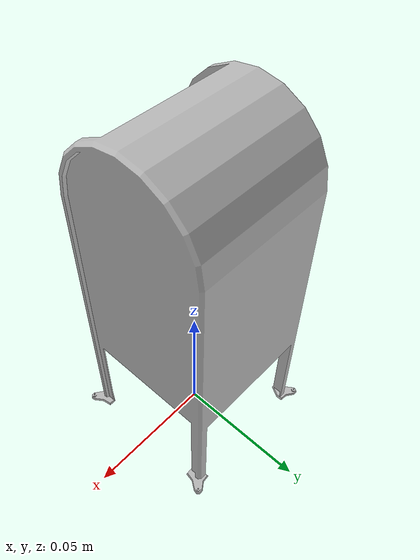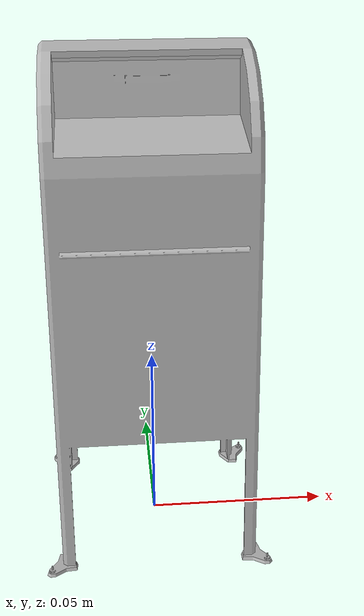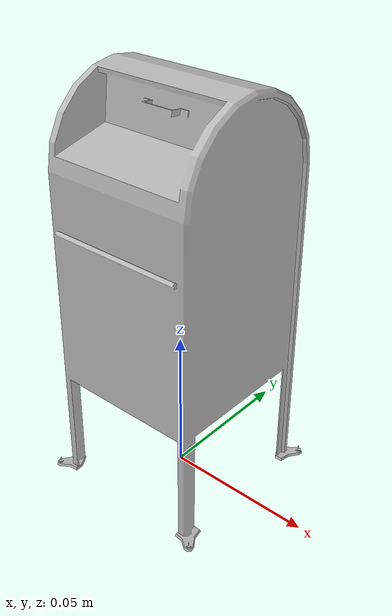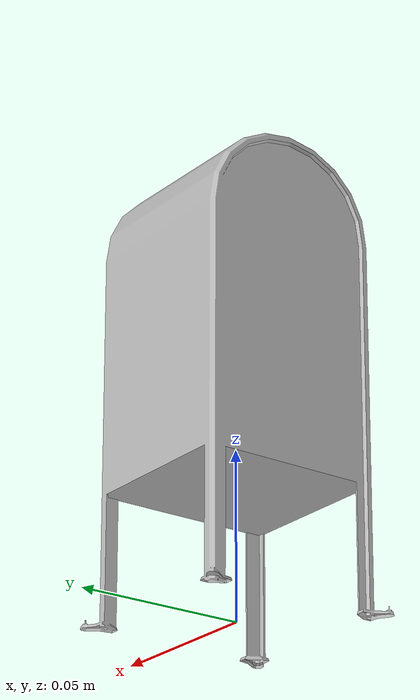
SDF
<?xml version="1.0" ?>
<sdf version="1.6">
  <model name="postbox">
    <static>true</static>
    <link name="link">
      <collision name="collision">
        <geometry>
          <mesh>
            <uri>model://postbox/meshes/postbox.dae</uri>
            <scale>0.09 0.09 0.09</scale>
          </mesh>
        </geometry>
      </collision>
      <visual name="visual">
        <geometry>
          <mesh>
            <uri>model://postbox/meshes/postbox.dae</uri>
            <scale>0.09 0.09 0.09</scale>
          </mesh>
        </geometry>
      </visual>
    </link>
  </model>
</sdf>
